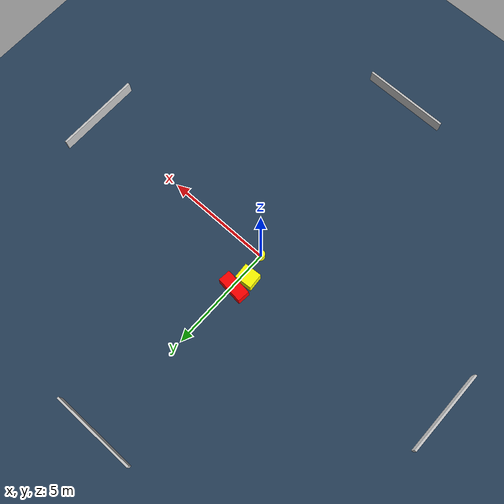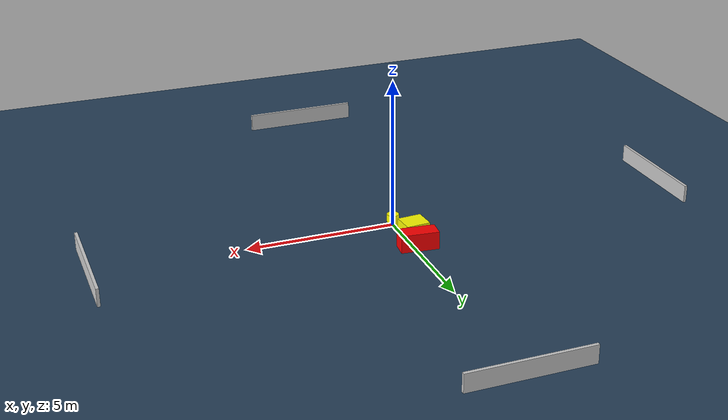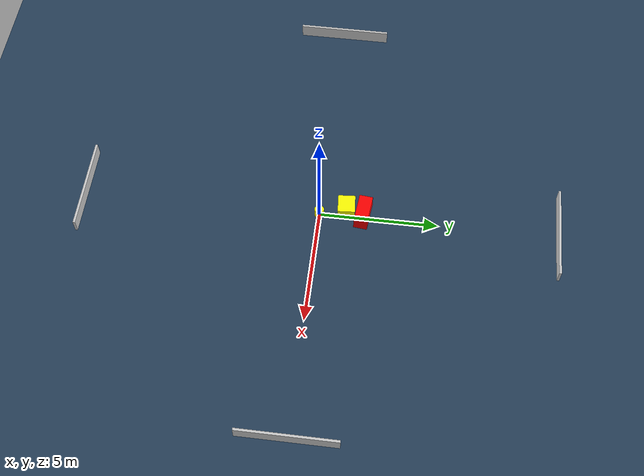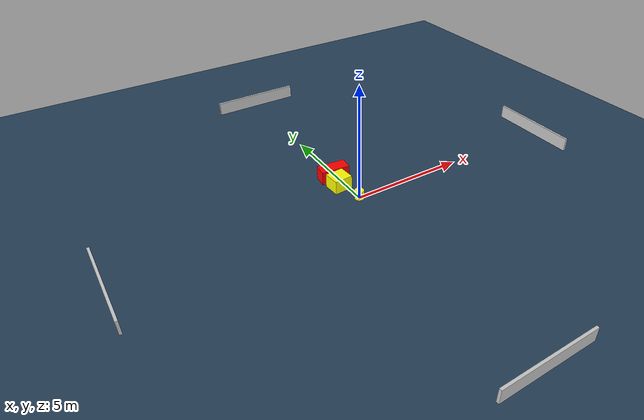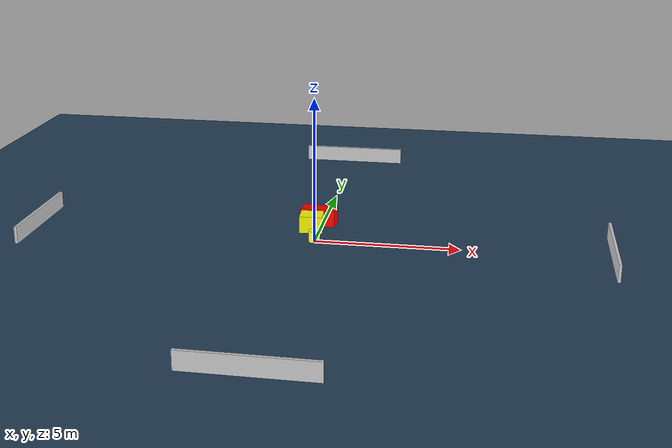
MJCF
<?xml version="1.0" ?>
<mujoco model="generated_environment">
  <option timestep="0.01" integrator="RK4" cone="elliptic"/>
  <default>
    <geom density="1"/>
  </default>
  <asset>
    <texture builtin="gradient" height="3072" name="skybox" rgb1="0.3 0.5 0.7" rgb2="0 0 0" type="skybox" width="512"/>
    <texture builtin="checker" height="300" name="groundplane" rgb1="0.2 0.3 0.4" rgb2="0.1 0.2 0.3" type="2d" width="300"/>
    <material name="groundplane" reflectance="0.2" texrepeat="5 5" texture="groundplane"/>
  </asset>
  <worldbody>
    <light dir="0 0 -1" directional="true" pos="0 0 1.5"/>
    <geom condim="3" friction="0.5 0.005 0.001" material="groundplane" name="floor" pos="0 0 0" size="0 0 0.05" type="plane"/>
    <body name="walls">
      <geom name="wall_1" condim="4" pos="-10.0 0.0 0.3" rgba="0.800000011920929 0.800000011920929 0.800000011920929 1.0" size="0.05 2.0 0.3" type="box"/>
      <geom name="wall_2" condim="4" pos="10.0 0.0 0.3" rgba="0.800000011920929 0.800000011920929 0.800000011920929 1.0" size="0.05 2.0 0.3" type="box"/>
      <geom name="wall_3" condim="4" pos="0.0 -10.0 0.3" rgba="0.800000011920929 0.800000011920929 0.800000011920929 1.0" size="2.0 0.05 0.3" type="box"/>
      <geom name="wall_4" condim="4" pos="0.0 10.0 0.3" rgba="0.800000011920929 0.800000011920929 0.800000011920929 1.0" size="2.0 0.05 0.3" type="box"/>
    </body>
    <body name="robot">
      <joint name="joint_x" type="slide" pos="0 0 0" axis="1 0 0"/>
      <joint name="joint_y" type="slide" pos="0 0 0" axis="0 1 0"/>
      <geom name="robot" type="cylinder" pos="0.0 0.0 0.2" size="0.2 0.2 0.0" mass="5.0" friction="1.0 0.005 0.0001" condim="4" rgba="1.0 1.0 0.0 1.0"/>
    </body>
    <body name="obstacle_1_movable">
      <geom name="obstacle_1_movable" condim="4" pos="-0.2884850087429327 1.1183777879832482 0.3" euler="0 0 93.95650101323248" friction="0.0 0.005 0.001" rgba="1.0 1.0 0.0 1.0" size="0.36038079988937616 0.40278320839823434 0.3" type="box" mass="0.1"/>
      <joint type="free"/>
    </body>
    <body name="obstacle_2_static">
      <geom name="obstacle_2_static" condim="4" pos="-0.1359971525623196 1.8422445997561232 0.3" euler="0 0 174.15904133662627" friction="0.0 0.005 0.001" rgba="1.0 0.0 0.0 1.0" size="0.6260696551227098 0.28606094375082647 0.3" type="box"/>
    </body>
  </worldbody>
  <actuator>
    <motor name="actuator_x" joint="joint_x" gear="1" ctrlrange="-1 1"/>
    <motor name="actuator_y" joint="joint_y" gear="1" ctrlrange="-1 1"/>
  </actuator>
</mujoco>
